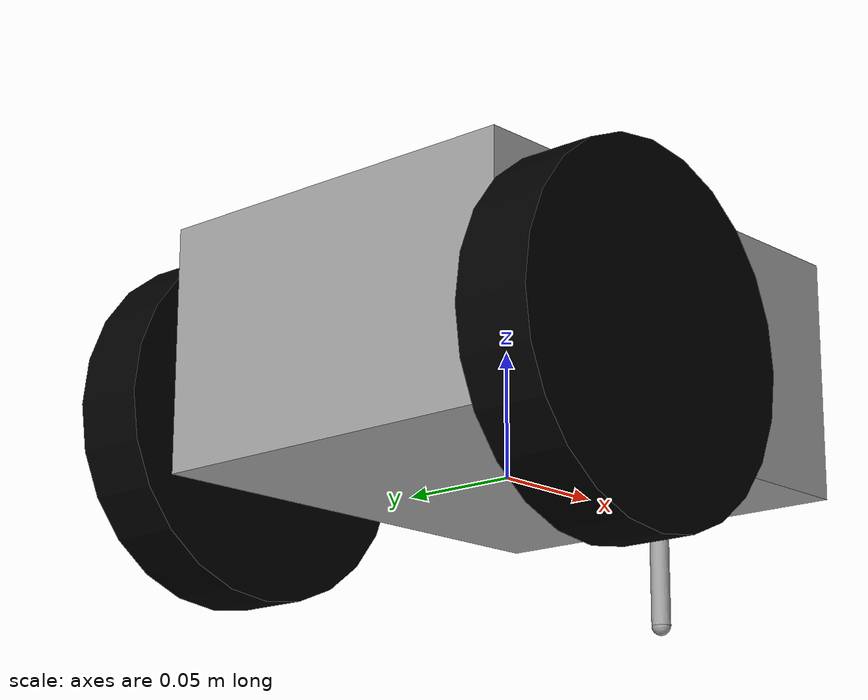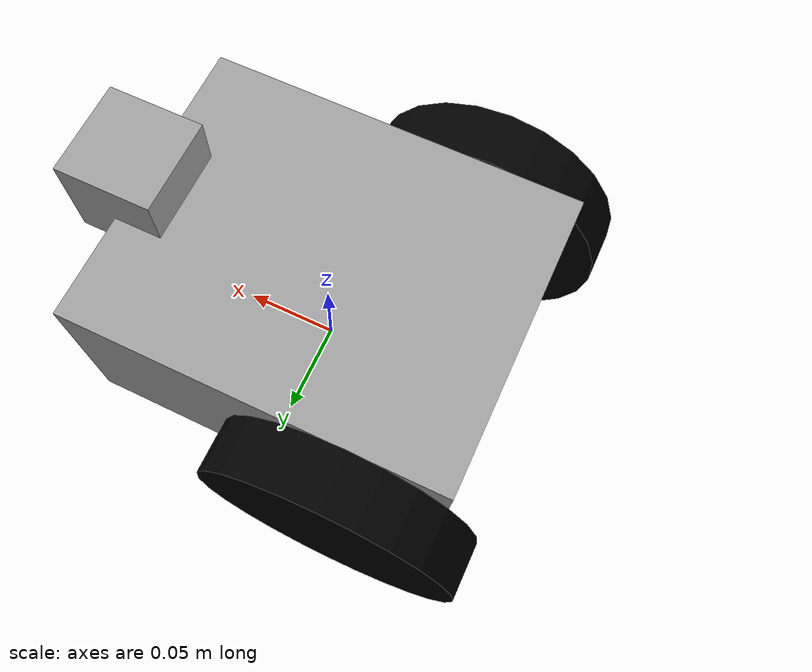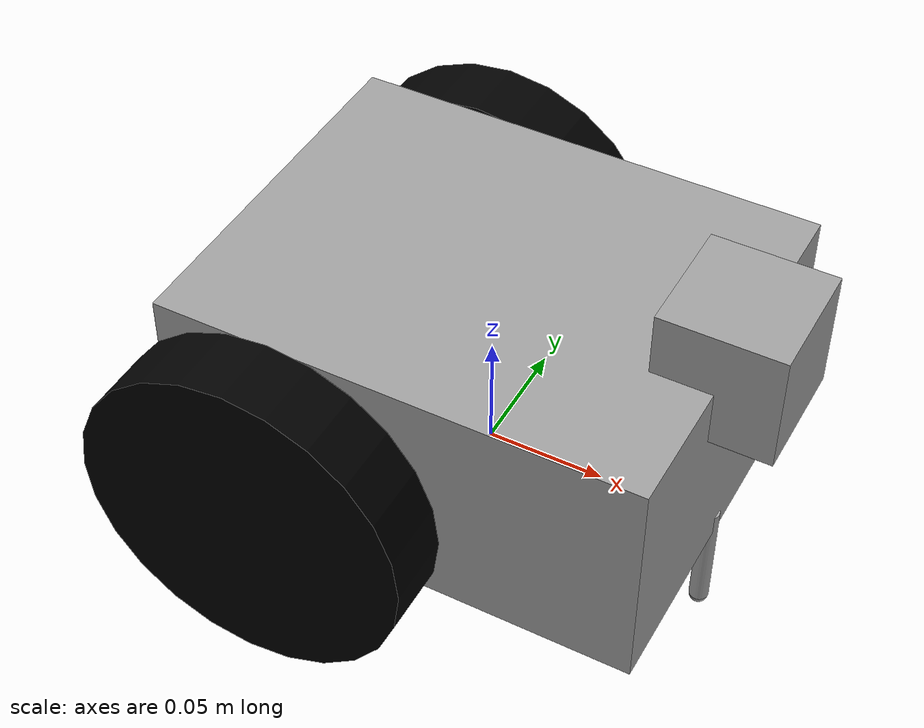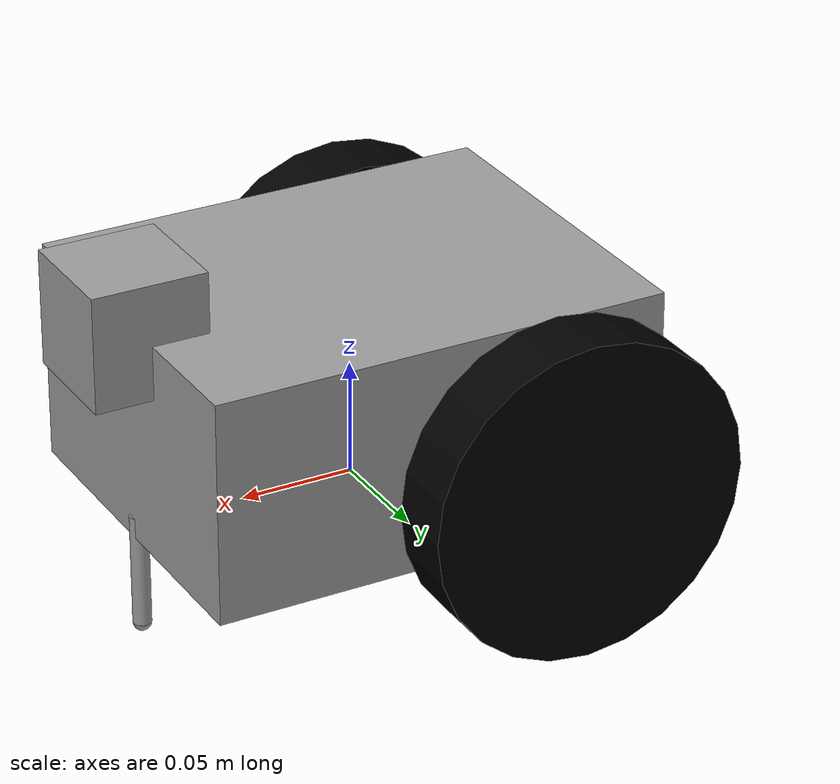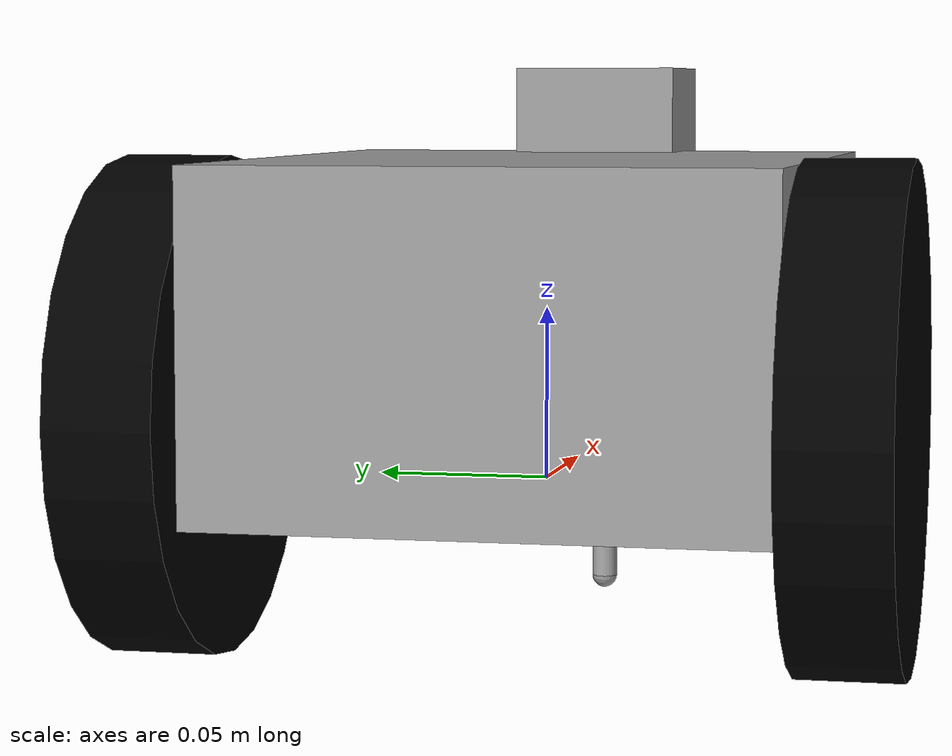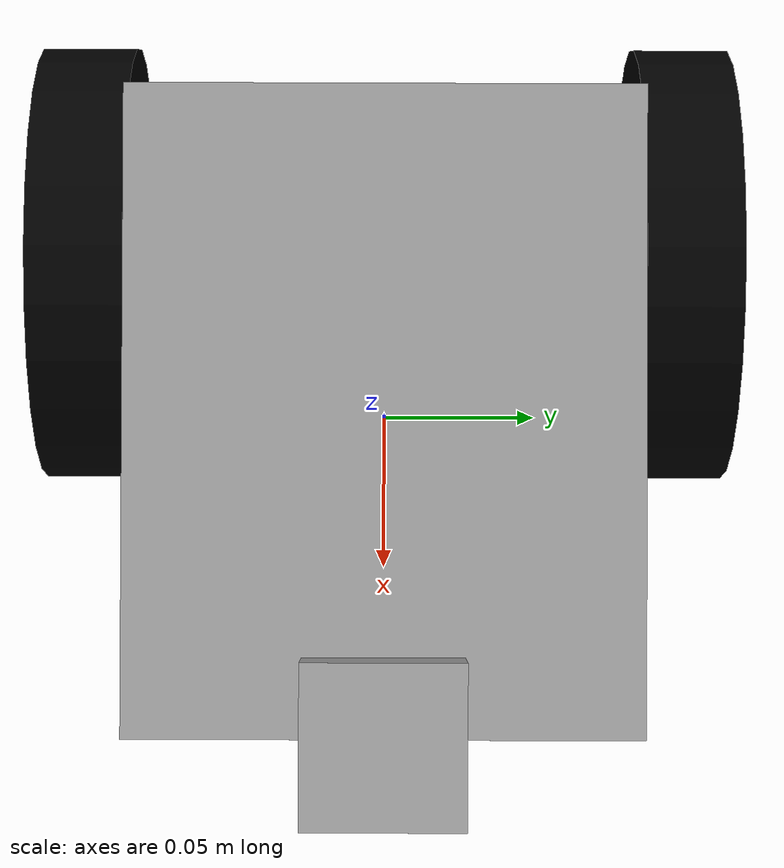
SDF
<sdf version='1.11'>
  <model name='yolo_robot'>
    <plugin name='gz::sim::systems::Physics' filename='gz-sim-physics-system'/>
    <plugin name='gz::sim::systems::Sensors' filename='gz-sim-sensors-system'>
      <render_engine>ogre2</render_engine>
    </plugin>
    <plugin name='Image Display' filename='ImageDisplay'>
      <gz-gui>
        <property key='state' type='string'>docked</property>
      </gz-gui>
      <topic>/camera/image_raw</topic>
    </plugin>

    <link name='base_link'>
      <inertial>
        <mass>5.0</mass>
        <inertia>
          <ixx>0.1</ixx>
          <ixy>0</ixy>
          <ixz>0</ixz>
          <iyy>0.1</iyy>
          <iyz>0</iyz>
          <izz>0.1</izz>
        </inertia>
      </inertial>

      <collision name='base_link_fixed_joint_lump__platform_collision'>
        <pose>0 0 1 0 0 0</pose>
        <geometry>
          <box>
            <size>0.2 0.16 0.097</size>
          </box>
        </geometry>
      </collision>

      <collision name='base_link_fixed_joint_lump__camera_link_collision_1'>
        <pose>0.1 0 0.095 0 0 0</pose>
        <geometry>
          <box>
            <size>0.05 0.05 0.05</size>
          </box>
        </geometry>
      </collision>

      <collision name='base_link_fixed_joint_lump__lower_link_collision_2'>
        <pose>0.097 0 -0.02 0 0 0</pose>
        <geometry>
          <cylinder>
            <length>0.05</length>
            <radius>0.004</radius>
          </cylinder>
        </geometry>
      </collision>

      <collision name='base_link_fixed_joint_lump__lower_sphere_collision_3'>
        <pose>0.097 0 -0.045 0 0 0</pose>
        <geometry>
          <sphere>
            <radius>0.004</radius>
          </sphere>
        </geometry>
      </collision>

      <visual name='base_link_fixed_joint_lump__platform_visual'>
        <pose>0 0 0.045 0 0 0</pose>
        <geometry>
          <box>
            <size>0.2 0.16 0.097</size>
          </box>
        </geometry>
        <material>
          <diffuse>0.625 0.625 0.625 1</diffuse>
          <ambient>0.625 0.625 0.625 1</ambient>
        </material>
      </visual>

      <visual name='base_link_fixed_joint_lump__camera_link_visual_1'>
        <pose>0.1 0 0.095 0 0 0</pose>
        <geometry>
          <box>
            <size>0.05 0.05 0.05</size>
          </box>
        </geometry>
        <material>
          <diffuse>0.625 0.625 0.625 1</diffuse>
          <ambient>0.625 0.625 0.625 1</ambient>
        </material>
      </visual>

      <visual name='base_link_fixed_joint_lump__lower_link_visual_2'>
        <pose>0.097 0 -0.02 0 0 0</pose>
        <geometry>
          <cylinder>
            <length>0.05</length>
            <radius>0.004</radius>
          </cylinder>
        </geometry>
        <material>
          <diffuse>0.625 0.625 0.625 1</diffuse>
          <ambient>0.625 0.625 0.625 1</ambient>
        </material>
      </visual>

      <visual name='base_link_fixed_joint_lump__lower_sphere_visual_3'>
        <pose>0.097 0 -0.045 0 0 0</pose>
        <geometry>
          <sphere>
            <radius>0.004</radius>
          </sphere>
        </geometry>
        <material>
          <diffuse>0.625 0.625 0.625 1</diffuse>
          <ambient>0.625 0.625 0.625 1</ambient>
        </material>
      </visual>

        <sensor name='camera' type='camera'>
          <pose>0 0 0 0 0 0</pose>
          <topic>/camera/image_raw</topic>
          <update_rate>30</update_rate>
          <enable_metrics>false</enable_metrics>
          <camera name='__default__'>
            <pose>0 0 0 0 0 0</pose>
            <horizontal_fov>1.047</horizontal_fov>
            <image>
              <width>720</width>
              <height>512</height>
              <format>RGB_INT8</format>
              <anti_aliasing>4</anti_aliasing>
            </image>
            <camera_info_topic>__default__</camera_info_topic>
            <trigger_topic></trigger_topic>
            <triggered>false</triggered>
            <clip>
              <near>0.1</near>
              <far>100</far>
            </clip>
            <save enabled='false'>
              <path>__default__</path>
            </save>
            <visibility_mask>4294967295</visibility_mask>
            <noise>
              <type>none</type>
              <mean>0</mean>
              <stddev>0</stddev>
            </noise>
            <distortion>
              <k1>0</k1>
              <k2>0</k2>
              <k3>0</k3>
              <p1>0</p1>
              <p2>0</p2>
              <center>0.5 0.5</center>
            </distortion>
            <lens>
              <type>stereographic</type>
              <scale_to_hfov>true</scale_to_hfov>
              <cutoff_angle>1.5707963267948966</cutoff_angle>
              <env_texture_size>256</env_texture_size>
            </lens>
            <optical_frame_id></optical_frame_id>
          </camera>
        </sensor>
    </link>

    <joint name='left_wheel_joint' type='revolute'>
      <pose relative_to='base_link'>-0.05 -0.095 0.025 0 0 -1.5707500000000001</pose>
      <parent>base_link</parent>
      <child>left_wheel</child>
      <axis>
        <xyz>0 0 1</xyz>
        <limit>
          <lower>-inf</lower>
          <upper>inf</upper>
        </limit>
        <dynamics>
          <spring_reference>0</spring_reference>
          <spring_stiffness>0</spring_stiffness>
        </dynamics>
      </axis>
    </joint>

    <link name='left_wheel'>
      <pose relative_to='left_wheel_joint'>0 0 0 0 0 0</pose>
      <inertial>
        <pose>0 0 0 0 0 0</pose>
        <mass>3</mass>
        <inertia>
          <ixx>0.01</ixx>
          <ixy>0</ixy>
          <ixz>0</ixz>
          <iyy>0.01</iyy>
          <iyz>0</iyz>
          <izz>0.01</izz>
        </inertia>
      </inertial>

      <collision name='left_wheel_collision'>
        <pose>0 0 0 0 1.5707963267948966 0</pose>
        <geometry>
          <cylinder>
            <length>0.03</length>
            <radius>0.07</radius>
          </cylinder>
        </geometry>
      </collision>

      <visual name='left_wheel_visual'>
        <pose>0 0 0 0 1.5707963267948966 0</pose>
        <geometry>
          <cylinder>
            <length>0.03</length>
            <radius>0.07</radius>
          </cylinder>
        </geometry>
        <material>
          <diffuse>0 0 0 1</diffuse>
          <ambient>0 0 0 1</ambient>
        </material>
      </visual>
    </link>

    <joint name='right_wheel_joint' type='revolute'>
      <pose relative_to='base_link'>-0.05 0.095 0.025 0 0 1.5707500000000001</pose>
      <parent>base_link</parent>
      <child>right_wheel</child>
      <axis>
        <xyz>0 0 1</xyz>
        <limit>
          <lower>-inf</lower>
          <upper>inf</upper>
        </limit>
        <dynamics>
          <spring_reference>0</spring_reference>
          <spring_stiffness>0</spring_stiffness>
        </dynamics>
      </axis>
    </joint>

    <link name='right_wheel'>
      <pose relative_to='right_wheel_joint'>0 0 0 0 0 0</pose>
      <inertial>
        <pose>0 0 0 0 0 0</pose>
        <mass>3</mass>
        <inertia>
          <ixx>0.01</ixx>
          <ixy>0</ixy>
          <ixz>0</ixz>
          <iyy>0.01</iyy>
          <iyz>0</iyz>
          <izz>0.01</izz>
        </inertia>
      </inertial>

      <collision name='right_wheel_collision'>
        <pose>0 0 0 0 1.5707963267948966 0</pose>
        <geometry>
          <cylinder>
            <length>0.03</length>
            <radius>0.07</radius>
          </cylinder>
        </geometry>
      </collision>

      <visual name='right_wheel_visual'>
        <pose>0 0 0 0 1.5707963267948966 0</pose>
        <geometry>
          <cylinder>
            <length>0.03</length>
            <radius>0.07</radius>
          </cylinder>
        </geometry>
        <material>
          <diffuse>0 0 0 1</diffuse>
          <ambient>0 0 0 1</ambient>
        </material>
      </visual>
    </link>

  </model>

</sdf>
